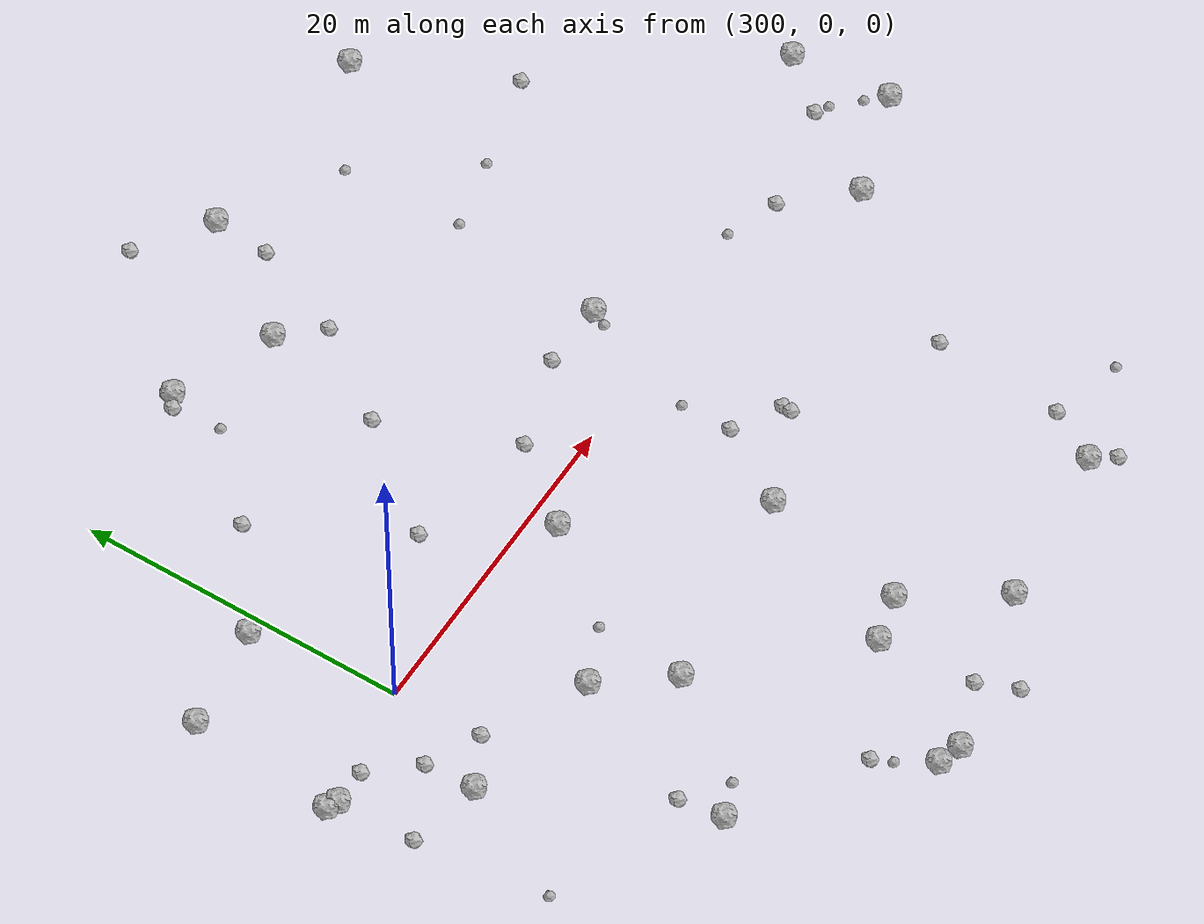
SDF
<sdf version="1.6">
 <world name="default">
  <include><uri>model://sun</uri></include>
  <model name="rock1_8_3">
   <include><uri>model://rock1</uri><pose>309.07094505615225 -12.541299442239008 0.5 0 0 0</pose></include>
  </model>
  <model name="rock1_8_4">
   <include><uri>model://rock1</uri><pose>334.88477910550796 25.92149908022843 0.5 0 0 0</pose></include>
  </model>
  <model name="rock1_8_5">
   <include><uri>model://rock1</uri><pose>342.644594038876 -4.034866469246481 0.5 0 0 0</pose></include>
  </model>
  <model name="rock1_8_6">
   <include><uri>model://rock1</uri><pose>302.7001501873018 -19.142324397302836 0.5 0 0 0</pose></include>
  </model>
  <model name="rock1_8_7">
   <include><uri>model://rock1</uri><pose>309.900688128657 21.22968011731099 0.5 0 0 0</pose></include>
  </model>
  <model name="rock1_8_8">
   <include><uri>model://rock1</uri><pose>349.38941051033254 -1.9311204121274557 0.5 0 0 0</pose></include>
  </model>
  <model name="rock1_8_9">
   <include><uri>model://rock1</uri><pose>298.949012890361 8.760612578591221 0.5 0 0 0</pose></include>
  </model>
  <model name="rock1_8_10">
   <include><uri>model://rock1</uri><pose>349.01689342152383 4.404672883338407 0.5 0 0 0</pose></include>
  </model>
  <model name="rock1_8_11">
   <include><uri>model://rock1</uri><pose>292.567742407323 -1.2810279100932433 0.5 0 0 0</pose></include>
  </model>
  <model name="rock1_8_12">
   <include><uri>model://rock1</uri><pose>316.7201167367431 -20.406621106495233 0.5 0 0 0</pose></include>
  </model>
  <model name="rock1_8_13">
   <include><uri>model://rock1</uri><pose>321.46522909081943 -10.887882432500902 0.5 0 0 0</pose></include>
  </model>
  <model name="rock1_8_14">
   <include><uri>model://rock1</uri><pose>316.16626336178734 18.721465838822823 0.5 0 0 0</pose></include>
  </model>
  <model name="rock1_8_15">
   <include><uri>model://rock1</uri><pose>327.21929879600793 4.3889547597992475 0.5 0 0 0</pose></include>
  </model>
  <model name="rock1_8_16">
   <include><uri>model://rock1</uri><pose>291.9408482372379 -0.9456915397719037 0.5 0 0 0</pose></include>
  </model>
  <model name="rock1_8_17">
   <include><uri>model://rock1</uri><pose>333.2177456856844 -24.165213715446903 0.5 0 0 0</pose></include>
  </model>
  <model name="rock1_8_18">
   <include><uri>model://rock1</uri><pose>321.1492875052562 25.955697305801735 0.5 0 0 0</pose></include>
  </model>
  <model name="rock1_8_19">
   <include><uri>model://rock1</uri><pose>297.16363307575557 -6.934780584735705 0.5 0 0 0</pose></include>
  </model>
  <model name="rock1_8_20">
   <include><uri>model://rock1</uri><pose>313.19585703431284 -27.54595569507854 0.5 0 0 0</pose></include>
  </model>
  <model name="rock1_8_21">
   <include><uri>model://rock1</uri><pose>313.8444043583979 -1.672423371797823 0.5 0 0 0</pose></include>
  </model>
  <model name="rock1_8_22">
   <include><uri>model://rock1</uri><pose>311.7173812152063 -27.082109854678457 0.5 0 0 0</pose></include>
  </model>
  <model name="rock1_8_23">
   <include><uri>model://rock1</uri><pose>319.58972786918747 -19.690255786713053 0.5 0 0 0</pose></include>
  </model>
  <model name="rock1_8_24">
   <include><uri>model://rock1</uri><pose>305.9865451310205 -8.54387250808464 0.5 0 0 0</pose></include>
  </model>
  <model name="rock1_8_25">
   <include><uri>model://rock1</uri><pose>323.2335615897341 -25.142069345437594 0.5 0 0 0</pose></include>
  </model>
  <model name="rock1_8_26">
   <include><uri>model://rock1</uri><pose>292.68244959765894 7.933030606781728 0.5 0 0 0</pose></include>
  </model>
  <model name="rock2_8_0">
   <include><uri>model://rock2</uri><pose>346.0799580933703 1.1959230693376348 0.3 0 0 0</pose></include>
  </model>
  <model name="rock2_8_1">
   <include><uri>model://rock2</uri><pose>339.0032652202797 16.808449302167055 0.3 0 0 0</pose></include>
  </model>
  <model name="rock2_8_2">
   <include><uri>model://rock2</uri><pose>339.22128550021284 -0.3395417258861855 0.3 0 0 0</pose></include>
  </model>
  <model name="rock2_8_3">
   <include><uri>model://rock2</uri><pose>324.3690410111684 -6.298005990907928 0.3 0 0 0</pose></include>
  </model>
  <model name="rock2_8_4">
   <include><uri>model://rock2</uri><pose>317.11360527093336 -26.122530778426956 0.3 0 0 0</pose></include>
  </model>
  <model name="rock2_8_5">
   <include><uri>model://rock2</uri><pose>292.7257286339399 -5.929893371338686 0.3 0 0 0</pose></include>
  </model>
  <model name="rock2_8_6">
   <include><uri>model://rock2</uri><pose>323.0812522020517 4.619771147365384 0.3 0 0 0</pose></include>
  </model>
  <model name="rock2_8_7">
   <include><uri>model://rock2</uri><pose>320.8082225243162 22.386727126897654 0.3 0 0 0</pose></include>
  </model>
  <model name="rock2_8_8">
   <include><uri>model://rock2</uri><pose>314.3061973783513 10.908423326238186 0.3 0 0 0</pose></include>
  </model>
  <model name="rock2_8_9">
   <include><uri>model://rock2</uri><pose>309.7110058958609 21.508446407260543 0.3 0 0 0</pose></include>
  </model>
  <model name="rock2_8_10">
   <include><uri>model://rock2</uri><pose>335.7076707502599 -13.160682298804325 0.3 0 0 0</pose></include>
  </model>
  <model name="rock2_8_11">
   <include><uri>model://rock2</uri><pose>317.42230245935366 2.8309932878649846 0.3 0 0 0</pose></include>
  </model>
  <model name="rock2_8_12">
   <include><uri>model://rock2</uri><pose>300.13852282502074 -5.394718366579674 0.3 0 0 0</pose></include>
  </model>
  <model name="rock2_8_13">
   <include><uri>model://rock2</uri><pose>335.04841810938683 -21.09157750951834 0.3 0 0 0</pose></include>
  </model>
  <model name="rock2_8_14">
   <include><uri>model://rock2</uri><pose>327.23111466510943 -8.504805379570342 0.3 0 0 0</pose></include>
  </model>
  <model name="rock2_8_15">
   <include><uri>model://rock2</uri><pose>334.19897905176043 -25.470408678715167 0.3 0 0 0</pose></include>
  </model>
  <model name="rock2_8_16">
   <include><uri>model://rock2</uri><pose>294.74873862183335 -1.2286243626613107 0.3 0 0 0</pose></include>
  </model>
  <model name="rock2_8_17">
   <include><uri>model://rock2</uri><pose>318.27580053962015 16.404423771985 0.3 0 0 0</pose></include>
  </model>
  <model name="rock2_8_18">
   <include><uri>model://rock2</uri><pose>302.33612594685354 -16.438587415300034 0.3 0 0 0</pose></include>
  </model>
  <model name="rock2_8_19">
   <include><uri>model://rock2</uri><pose>318.0607885518666 -28.44759012613481 0.3 0 0 0</pose></include>
  </model>
  <model name="rock2_8_20">
   <include><uri>model://rock2</uri><pose>309.2507309393241 4.516912636687103 0.3 0 0 0</pose></include>
  </model>
  <model name="rock2_8_21">
   <include><uri>model://rock2</uri><pose>309.08474865812616 20.760038151735777 0.3 0 0 0</pose></include>
  </model>
  <model name="rock2_8_22">
   <include><uri>model://rock2</uri><pose>304.63707696531316 13.084951470638522 0.3 0 0 0</pose></include>
  </model>
  <model name="rock2_8_23">
   <include><uri>model://rock2</uri><pose>309.9321296529302 -23.826363749963512 0.3 0 0 0</pose></include>
  </model>
  <model name="rock2_8_24">
   <include><uri>model://rock2</uri><pose>296.99274053557826 -3.8609417385555247 0.3 0 0 0</pose></include>
  </model>
  <model name="rock2_8_25">
   <include><uri>model://rock2</uri><pose>327.2664916618552 -7.971190604090911 0.3 0 0 0</pose></include>
  </model>
  <model name="rock2_8_26">
   <include><uri>model://rock2</uri><pose>316.81574606595177 29.001536509832007 0.3 0 0 0</pose></include>
  </model>
  <model name="rock3_8_0">
   <include><uri>model://rock3</uri><pose>348.35893970713147 -0.7682103030330438 0.2 0 0 0</pose></include>
  </model>
  <model name="rock3_8_1">
   <include><uri>model://rock3</uri><pose>346.90953461043114 0.7141916189692346 0.2 0 0 0</pose></include>
  </model>
  <model name="rock3_8_2">
   <include><uri>model://rock3</uri><pose>328.1510575230979 21.837394683141056 0.2 0 0 0</pose></include>
  </model>
  <model name="rock3_8_3">
   <include><uri>model://rock3</uri><pose>335.9053273951902 0.8613518808796314 0.2 0 0 0</pose></include>
  </model>
  <model name="rock3_8_4">
   <include><uri>model://rock3</uri><pose>332.8848851004558 15.217940757609412 0.2 0 0 0</pose></include>
  </model>
  <model name="rock3_8_5">
   <include><uri>model://rock3</uri><pose>310.46462046777054 -25.003468474995515 0.2 0 0 0</pose></include>
  </model>
  <model name="rock3_8_6">
   <include><uri>model://rock3</uri><pose>309.34310994030915 17.69876523620907 0.2 0 0 0</pose></include>
  </model>
  <model name="rock3_8_7">
   <include><uri>model://rock3</uri><pose>324.3469940502432 -3.1805983345503215 0.2 0 0 0</pose></include>
  </model>
  <model name="rock3_8_8">
   <include><uri>model://rock3</uri><pose>293.67245547097576 -13.860177113697247 0.2 0 0 0</pose></include>
  </model>
  <model name="rock3_8_9">
   <include><uri>model://rock3</uri><pose>328.3873778807901 14.188000149332076 0.2 0 0 0</pose></include>
  </model>
  <model name="rock3_8_10">
   <include><uri>model://rock3</uri><pose>326.73807277195715 3.4342205974319597 0.2 0 0 0</pose></include>
  </model>
  <model name="rock3_8_11">
   <include><uri>model://rock3</uri><pose>339.51018807594653 -22.384865241586425 0.2 0 0 0</pose></include>
  </model>
  <model name="rock3_8_12">
   <include><uri>model://rock3</uri><pose>304.7708988163727 -18.367081765085178 0.2 0 0 0</pose></include>
  </model>
  <model name="rock3_8_13">
   <include><uri>model://rock3</uri><pose>309.3918879880639 -7.107213001159472 0.2 0 0 0</pose></include>
  </model>
 </world>
</sdf>
